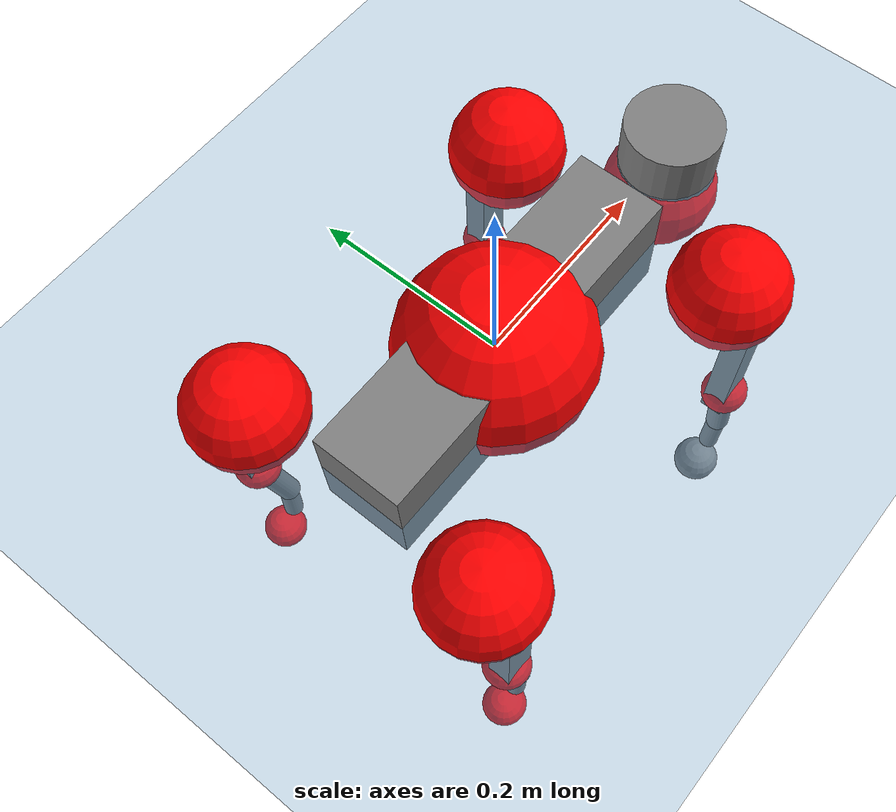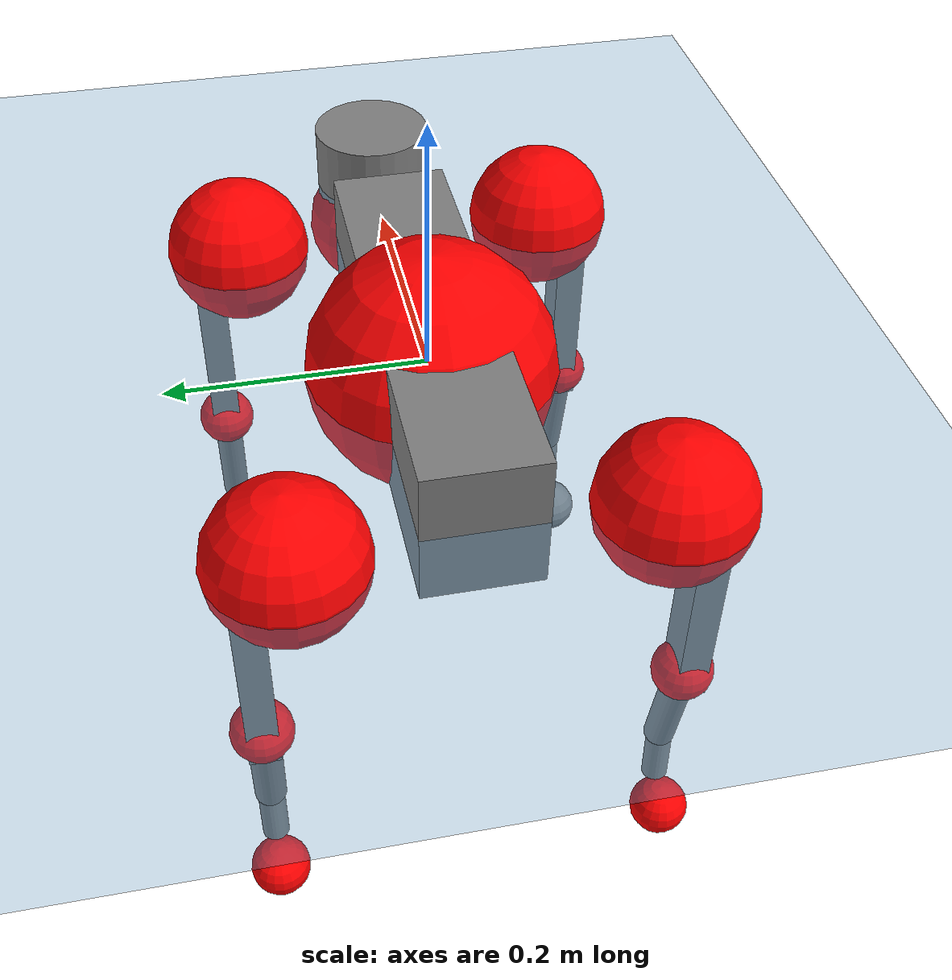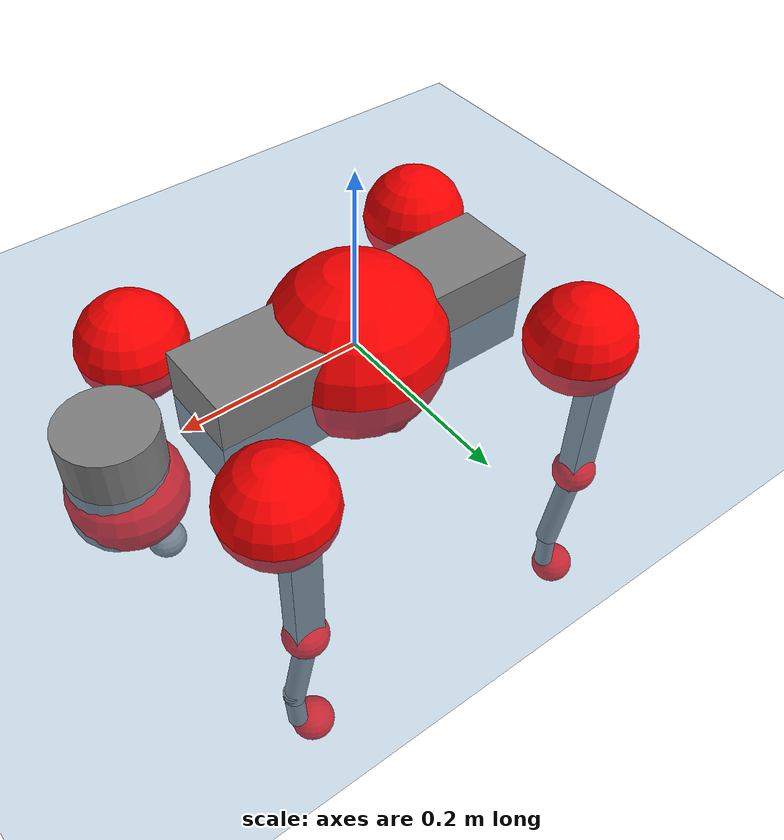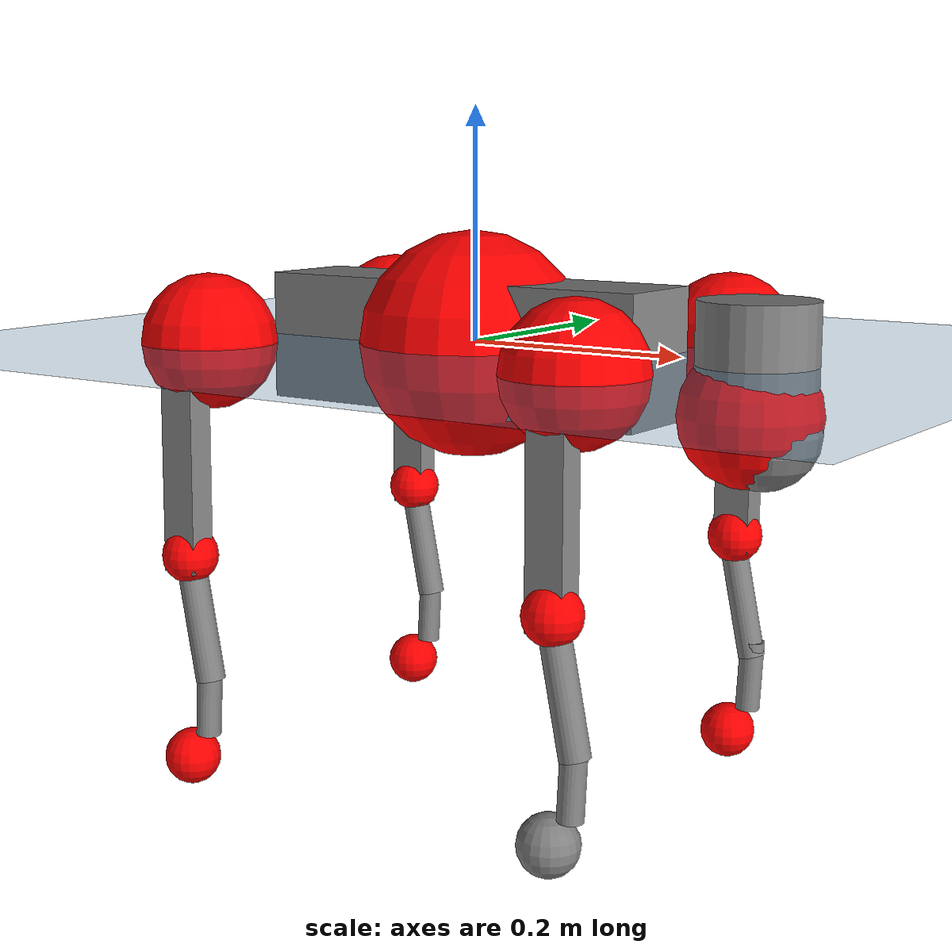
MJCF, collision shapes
<mujoco model="go2">
  <compiler angle="radian" assetdir="assets" balanceinertia="true" inertiafromgeom="false"/>

  <option timestep="0.005" density="1.2" viscosity="2e-05"/>

  <size nkey="1"/>

  <visual>
    <quality shadowsize="8192"/>
    <map shadowclip="0.5"/>
  </visual>

  <default>
    <default class="/">
      <geom contype="0" conaffinity="0" group="1" solref="-1000 -80"/>
      <site size="0.01 0.005 0.005" group="5"/>
      <general forcelimited="true" biastype="affine" gainprm="20" biasprm="0 -20 -0.5"/>
      <default class="go2">
        <joint armature="0.01" damping="0.01" frictionloss="0.2"/>
        <geom condim="1" margin="0.001"/>
        <default class="visual">
          <geom type="mesh" group="2"/>
        </default>
        <default class="collision">
          <geom group="3"/>
          <default class="foot">
            <geom size="0.022 0 0" condim="6" priority="1" friction="0.8 0.02 0.01" solimp="0.015 1 0.022"/>
          </default>
        </default>
        <default class="reward_collision_sphere">
          <geom group="5" rgba="1 0 0 1"/>
        </default>
      </default>
    </default>
  </default>

  <asset>
    <texture type="skybox" colorspace="auto" name="//unnamed_texture_0" builtin="gradient" rgb1="0.95 0.95 0.95" rgb2="0.95 0.95 0.95" width="100" height="600"/>
    <texture type="2d" colorspace="auto" name="texplane" builtin="checker" rgb1="0.345 0.575 0.748" rgb2="0.345 0.575 0.748" markrgb="1 1 1" width="512" height="512"/>
    <material name="MatPlane" class="/" texture="texplane" texuniform="true" texrepeat="2 2" specular="0.9"/>
    <material name="metal" class="/" rgba="0.9 0.95 0.95 1"/>
    <material name="black" class="/" rgba="0 0 0 1"/>
    <material name="white" class="/"/>
    <material name="gray" class="/" rgba="0.671705 0.692426 0.77427 1"/>
    <mesh name="base_0" class="/" file="base_0.obj"/>
    <mesh name="base_1" class="/" file="base_1.obj"/>
    <mesh name="base_2" class="/" file="base_2.obj"/>
    <mesh name="base_3" class="/" file="base_3.obj"/>
    <mesh name="base_4" class="/" file="base_4.obj"/>
    <mesh name="hip_0" class="/" file="hip_0.obj"/>
    <mesh name="hip_1" class="/" file="hip_1.obj"/>
    <mesh name="thigh_0" class="/" file="thigh_0.obj"/>
    <mesh name="thigh_1" class="/" file="thigh_1.obj"/>
    <mesh name="thigh_mirror_0" class="/" file="thigh_mirror_0.obj"/>
    <mesh name="thigh_mirror_1" class="/" file="thigh_mirror_1.obj"/>
    <mesh name="calf_0" class="/" file="calf_0.obj"/>
    <mesh name="calf_1" class="/" file="calf_1.obj"/>
    <mesh name="calf_mirror_0" class="/" file="calf_mirror_0.obj"/>
    <mesh name="calf_mirror_1" class="/" file="calf_mirror_1.obj"/>
    <mesh name="foot" class="/" file="foot.obj"/>
  </asset>

  <worldbody>
    <geom name="floor" class="/" size="100 100 0.125" type="plane" group="0" material="MatPlane"/>
    <light name="toplight_shadow" class="/" pos="0 0 5" dir="0.0990148 0.0990148 -0.990148" type="directional" ambient="0.04 0.04 0.04" diffuse="0.55 0.55 0.55" specular="0.12 0.12 0.12"/>
    <light name="toplight_fill" class="/" pos="0 0 5" dir="0.0990148 0.0990148 -0.990148" type="directional" castshadow="false" ambient="0.04 0.04 0.04" diffuse="0.3 0.3 0.3" specular="0.08 0.08 0.08"/>
    <body name="trunk" childclass="go2" pos="-0.00131033 -0.00279842 -0.00193397" quat="0.999999 -0.00106615 0.000616035 5.92929e-05">
      <inertial pos="0.01895 0.00077448 -0.00451893" quat="-0.00938888 0.712332 0.000824385 0.701779" mass="6.53676" diaginertia="0.0795169 0.179171 0.0114001"/>
      <joint name="//unnamed_joint_0" type="free" armature="0" damping="0" frictionloss="0"/>
      <geom name="//unnamed_geom_1" class="visual" material="black" mesh="base_0"/>
      <geom name="//unnamed_geom_2" class="visual" material="black" mesh="base_1"/>
      <geom name="//unnamed_geom_3" class="visual" material="black" mesh="base_2"/>
      <geom name="//unnamed_geom_4" class="visual" material="white" mesh="base_3"/>
      <geom name="//unnamed_geom_5" class="visual" material="gray" mesh="base_4"/>
      <geom name="trunk_1" class="collision" size="0.183642 0.045642 0.0556491" type="box"/>
      <geom name="trunk_2" class="collision" size="0.048815 0.0439335" pos="0.269112 0 0.00853884" type="cylinder"/>
      <geom name="trunk_3" class="collision" size="0.0458861" pos="0.276666 0 -0.0512331"/>
      <geom name="//unnamed_geom_9" class="reward_collision_sphere" size="0.09763"/>
      <geom name="//unnamed_geom_10" class="reward_collision_sphere" size="0.058578" pos="0.264391 0 -0.0384248"/>
      <site name="imu" pos="-0.0261217 0.00856622 0.0320213" size="0.009763"/>
      <camera name="track" pos="0 -2.26153 0" quat="0.707107 0.707107 0 0" mode="trackcom"/>
      <camera name="ego_camera" pos="0.294607 0 0.0384248" quat="-0.5 -0.5 0.5 0.5"/>
      <body name="FL_hip" pos="0.179619 0.049807 0.00318936" quat="1 -3.21041e-05 0.000428204 -0.000438105">
        <inertial pos="-0.00595726 -0.000120988 -0.00285189" quat="0.49821 0.498104 0.502551 0.50112" mass="0.654092" diaginertia="0.000685569 0.00110768 0.000231174"/>
        <joint name="FL_hip_joint" pos="0 0 0" axis="0.999958 0.00913093 0.000594098" range="-1.02994 1.00568" armature="0.0110493" damping="0" frictionloss="0.216349"/>
        <geom name="//unnamed_geom_11" class="visual" material="metal" mesh="hip_0"/>
        <geom name="//unnamed_geom_12" class="visual" material="gray" mesh="hip_1"/>
        <geom name="//unnamed_geom_13" class="collision" size="0.0449098 0.019526" pos="0 0.0904611 0" quat="0.707107 0.707107 0 0" type="cylinder"/>
        <geom name="//unnamed_geom_14" class="reward_collision_sphere" size="0.058578" pos="0 0.0791534 0"/>
        <body name="FL_thigh" pos="-0.00126892 0.107799 0.0031442" quat="1 -0.00028039 0.000402238 0.000140734">
          <inertial pos="-0.00227076 -0.0260863 -0.0259727" quat="0.832115 0.0858877 -0.019131 0.547578" mass="1.07102" diaginertia="0.00455284 0.010971 0.00039202"/>
          <joint name="FL_thigh_joint" pos="0 0 0" axis="-0.00457756 0.999903 -0.0131356" stiffness="0.000490094" range="-1.61729 3.54236" armature="0.0111016" damping="0" frictionloss="0.219966"/>
          <geom name="//unnamed_geom_15" class="visual" material="metal" mesh="thigh_0"/>
          <geom name="//unnamed_geom_16" class="visual" material="gray" mesh="thigh_1"/>
          <geom name="//unnamed_geom_17" class="collision" size="0.103976 0.0119597 0.0165971" pos="0 0 -0.0909387" quat="0.707107 0 0.707107 0" type="box"/>
          <body name="FL_calf" pos="-0.000993879 -0.000131136 -0.181502" quat="0.999999 -0.000629564 -0.00103587 -0.000682209">
            <inertial pos="0.00869483 0.00214303 -0.123304" quat="0.716036 0.00325382 0.00208521 0.698053" mass="0.227695" diaginertia="0.00110176 0.00279917 2.33185e-05"/>
            <joint name="FL_calf_joint" pos="0 0 0" axis="0.000754292 1 0.000360231" stiffness="0.00224479" range="-2.70219 -0.884548" armature="0.00830716" damping="0.00762239" frictionloss="0.202679"/>
            <geom name="//unnamed_geom_18" class="visual" material="gray" mesh="calf_0"/>
            <geom name="//unnamed_geom_19" class="visual" material="black" mesh="calf_1"/>
            <geom name="FL_calf0" class="collision" size="0.0117156 0.058578" pos="0.00755402 0 -0.0512331" quat="0.994493 0 -0.104807 0" type="cylinder"/>
            <geom name="//unnamed_geom_21" class="collision" size="0.0107393 0.0317298" pos="0.018885 0 -0.126375" quat="0.999688 0 0.0249974 0" type="cylinder"/>
            <geom name="//unnamed_geom_22" class="visual" pos="0 0 -0.181877" quat="1 0 0 0" material="black" mesh="foot"/>
            <geom name="FL_foot" class="foot" size="0.0205598" pos="-0.0018885 0 -0.181877"/>
            <geom name="//unnamed_geom_24" class="reward_collision_sphere" size="0.0244075"/>
            <geom name="//unnamed_geom_25" class="reward_collision_sphere" size="0.0244075" pos="-0.0018885 0 -0.181877"/>
            <site name="FL_foot" class="foot" pos="-0.0018885 0 -0.181877" size="0.009763"/>
          </body>
        </body>
      </body>
      <body name="FR_hip" pos="0.183037 -0.0507705 0.0019497" quat="1 0.000353021 0.00034981 -0.00082099">
        <inertial pos="-0.0025885 -0.00145861 -0.000402376" quat="0.499181 0.507179 0.499888 0.493659" mass="0.653522" diaginertia="0.000692039 0.00113841 0.000217527"/>
        <joint name="FR_hip_joint" pos="0 0 0" axis="0.999987 -0.00508581 -0.000838814" range="-0.994117 1.05413" armature="0.00930684" damping="0.00778736" frictionloss="0.207058"/>
        <geom name="//unnamed_geom_26" class="visual" pos="0 2.41206e-09 1.03458e-07" quat="4.63268e-05 1 0 0" material="metal" mesh="hip_0"/>
        <geom name="//unnamed_geom_27" class="visual" pos="0 3.91023e-09 -2.55891e-07" quat="4.63268e-05 1 0 0" material="gray" mesh="hip_1"/>
        <geom name="//unnamed_geom_28" class="collision" size="0.0449098 0.019526" pos="0 -0.0904611 0" quat="0.707107 0.707107 0 0" type="cylinder"/>
        <geom name="//unnamed_geom_29" class="reward_collision_sphere" size="0.058578" pos="0 -0.0791534 0"/>
        <body name="FR_thigh" pos="-0.000233852 -0.10862 0.00217844" quat="1 0.000188909 -0.00085177 -0.000277317">
          <inertial pos="-0.00619899 0.0243672 -0.0288234" quat="0.551624 -0.0166805 0.0831176 0.829773" mass="1.04004" diaginertia="0.00439525 0.0102732 0.000378224"/>
          <joint name="FR_thigh_joint" pos="0 0 0" axis="-0.00137139 -0.999939 -0.0109257" stiffness="0.00361856" range="-3.5127 1.52936" armature="0.00962847" damping="0.0148481" frictionloss="0.21678"/>
          <geom name="//unnamed_geom_30" class="visual" material="metal" mesh="thigh_mirror_0"/>
          <geom name="//unnamed_geom_31" class="visual" material="gray" mesh="thigh_mirror_1"/>
          <geom name="//unnamed_geom_32" class="collision" size="0.103976 0.0119597 0.0165971" pos="0 0 -0.0909387" quat="0.707107 0 0.707107 0" type="box"/>
          <body name="FR_calf" pos="0.00268617 -0.00221533 -0.180279" quat="1 -0.000102813 -9.36124e-05 0.000106345">
            <inertial pos="0.00856666 0.000818034 -0.122009" quat="0.706045 -0.00366817 0.00127554 0.708156" mass="0.233504" diaginertia="0.00118433 0.0026907 2.46087e-05"/>
            <joint name="FR_calf_joint" pos="0 0 0" axis="0.000516653 -0.99998 0.00625517" range="0.841661 2.73786" armature="0.00930551" damping="0.0232356" frictionloss="0.20065"/>
            <geom name="//unnamed_geom_33" class="visual" material="gray" mesh="calf_mirror_0"/>
            <geom name="//unnamed_geom_34" class="visual" material="black" mesh="calf_mirror_1"/>
            <geom name="FR_calf0" class="collision" size="0.0126919 0.058578" pos="0.00944252 0 -0.0512331" quat="0.995004 0 -0.0998334 0" type="cylinder"/>
            <geom name="//unnamed_geom_36" class="collision" size="0.0107393 0.0317298" pos="0.018885 0 -0.126375" quat="0.999688 0 0.0249974 0" type="cylinder"/>
            <geom name="//unnamed_geom_37" class="visual" pos="0 0 -0.181877" quat="1 0 0 0" material="black" mesh="foot"/>
            <geom name="FR_foot" class="foot" size="0.0255425" pos="-0.0018885 0 -0.181877"/>
            <geom name="//unnamed_geom_39" class="reward_collision_sphere" size="0.0244075"/>
            <geom name="//unnamed_geom_40" class="reward_collision_sphere" size="0.0244075" pos="-0.0018885 0 -0.181877"/>
            <site name="FR_foot" class="foot" pos="-0.0018885 0 -0.181877" size="0.009763"/>
          </body>
        </body>
      </body>
      <body name="RL_hip" pos="-0.184547 0.0547137 0.00312628" quat="1 -7.28488e-05 -3.37676e-05 -3.07406e-05">
        <inertial pos="0.00677687 0.00311527 -0.00080368" quat="0.505218 0.498362 0.497313 0.499069" mass="0.626328" diaginertia="0.000657971 0.00112767 0.000213871"/>
        <joint name="RL_hip_joint" pos="0 0 0" axis="-0.999716 -0.0214735 0.0103601" stiffness="0.0124352" range="-1.04204 1.02796" armature="0.00988711" damping="0.0122854" frictionloss="0.21338"/>
        <geom name="//unnamed_geom_41" class="visual" pos="-7.87248e-10 0 -1.54319e-07" quat="4.63268e-05 0 1 0" material="metal" mesh="hip_0"/>
        <geom name="//unnamed_geom_42" class="visual" pos="-1.27622e-09 0 -1.36859e-07" quat="4.63268e-05 0 1 0" material="gray" mesh="hip_1"/>
        <geom name="//unnamed_geom_43" class="collision" size="0.0449098 0.019526" pos="0 0.0904611 0" quat="0.707107 0.707107 0 0" type="cylinder"/>
        <geom name="//unnamed_geom_44" class="reward_collision_sphere" size="0.058578" pos="0 0.0791534 0"/>
        <body name="RL_thigh" pos="-0.00111341 0.110451 0.00261972" quat="1 0.00014354 0.000649873 -5.51575e-05">
          <inertial pos="-0.00332672 -0.0245444 -0.027588" quat="0.829665 0.0774614 -0.0126407 0.552716" mass="1.04184" diaginertia="0.00452366 0.0104606 0.000406491"/>
          <joint name="RL_thigh_joint" pos="0 0 0" axis="0.00874194 0.999959 0.00243591" range="-0.507699 4.56593" armature="0.00851894" damping="0.00184503" frictionloss="0.179677"/>
          <geom name="//unnamed_geom_45" class="visual" material="metal" mesh="thigh_0"/>
          <geom name="//unnamed_geom_46" class="visual" material="gray" mesh="thigh_1"/>
          <geom name="//unnamed_geom_47" class="collision" size="0.103976 0.0119597 0.0165971" pos="0 0 -0.0909387" quat="0.707107 0 0.707107 0" type="box"/>
          <body name="RL_calf" pos="0.000639544 -0.000579045 -0.178631" quat="1 -0.000240593 -0.000201866 -0.000123993">
            <inertial pos="0.00581269 -0.000381053 -0.117991" quat="0.710655 0.00150427 -0.00454883 0.703525" mass="0.226013" diaginertia="0.00111811 0.00270174 2.45447e-05"/>
            <joint name="RL_calf_joint" pos="0 0 0" axis="0.00111043 0.999984 -0.00549803" range="-2.73825 -0.839162" armature="0.00877369" damping="0.000593393" frictionloss="0.198708"/>
            <geom name="//unnamed_geom_48" class="visual" material="gray" mesh="calf_0"/>
            <geom name="//unnamed_geom_49" class="visual" material="black" mesh="calf_1"/>
            <geom name="RL_calf0" class="collision" size="0.0126919 0.058578" pos="0.00944252 0 -0.0512331" quat="0.995004 0 -0.0998334 0" type="cylinder"/>
            <geom name="//unnamed_geom_51" class="collision" size="0.0107393 0.0317298" pos="0.018885 0 -0.126375" quat="0.999688 0 0.0249974 0" type="cylinder"/>
            <geom name="//unnamed_geom_52" class="visual" pos="0 0 -0.181877" quat="1 0 0 0" material="black" mesh="foot"/>
            <geom name="RL_foot" class="foot" size="0.0218513" pos="-0.0018885 0 -0.181877"/>
            <geom name="//unnamed_geom_54" class="reward_collision_sphere" size="0.0244075"/>
            <geom name="//unnamed_geom_55" class="reward_collision_sphere" size="0.0244075" pos="-0.0018885 0 -0.181877"/>
            <site name="RL_foot" class="foot" pos="-0.0018885 0 -0.181877" size="0.009763"/>
          </body>
        </body>
      </body>
      <body name="RR_hip" pos="-0.182769 -0.0531046 0.00209075" quat="0.999999 -0.000422558 0.00118306 -0.000934502">
        <inertial pos="0.00531556 0.000357559 -0.000840687" quat="0.491461 0.50077 0.501095 0.506557" mass="0.631514" diaginertia="0.000687425 0.00114213 0.000212672"/>
        <joint name="RR_hip_joint" pos="0 0 0" axis="-0.999992 0.00365943 -0.00151121" stiffness="0.00361125" range="-1.05568 1.04691" armature="0.010539" damping="0.0110911" frictionloss="0.174429"/>
        <geom name="//unnamed_geom_56" class="visual" pos="7.93705e-10 2.41206e-09 -2.57777e-07" quat="2.14617e-09 4.63268e-05 4.63268e-05 -1" material="metal" mesh="hip_0"/>
        <geom name="//unnamed_geom_57" class="visual" pos="1.26025e-09 3.91023e-09 1.19033e-07" quat="2.14617e-09 4.63268e-05 4.63268e-05 -1" material="gray" mesh="hip_1"/>
        <geom name="//unnamed_geom_58" class="collision" size="0.0449098 0.019526" pos="0 -0.0904611 0" quat="0.707107 0.707107 0 0" type="cylinder"/>
        <geom name="//unnamed_geom_59" class="reward_collision_sphere" size="0.058578" pos="0 -0.0791534 0"/>
        <body name="RR_thigh" pos="-0.00100095 -0.109477 -0.00204142" quat="0.999999 -0.00107663 0.000183265 0.000411189">
          <inertial pos="-0.00347791 0.0229027 -0.0286874" quat="0.551818 -0.0189226 0.0824447 0.829664" mass="1.01562" diaginertia="0.0042512 0.0104903 0.000381036"/>
          <joint name="RR_thigh_joint" pos="0 0 0" axis="-0.00010443 -1 -0.000389716" range="-4.57348 0.580798" armature="0.011034" damping="0.0107844" frictionloss="0.187849"/>
          <geom name="//unnamed_geom_60" class="visual" material="metal" mesh="thigh_mirror_0"/>
          <geom name="//unnamed_geom_61" class="visual" material="gray" mesh="thigh_mirror_1"/>
          <geom name="//unnamed_geom_62" class="collision" size="0.103976 0.0119597 0.0165971" pos="0 0 -0.0909387" quat="0.707107 0 0.707107 0" type="box"/>
          <body name="RR_calf" pos="-0.00038872 0.00259858 -0.181523" quat="1 -0.000495346 0.000108176 -0.000137303">
            <inertial pos="0.00636237 3.57472e-05 -0.118222" quat="0.70087 -0.00558534 0.0104187 0.713191" mass="0.223681" diaginertia="0.00114054 0.00257646 2.46307e-05"/>
            <joint name="RR_calf_joint" pos="0 0 0" axis="-0.00812125 -0.999936 0.00788303" stiffness="0.00141856" range="0.892302 2.73062" armature="0.00836614" damping="0.0116606" frictionloss="0.203151"/>
            <geom name="//unnamed_geom_63" class="visual" material="gray" mesh="calf_mirror_0"/>
            <geom name="//unnamed_geom_64" class="visual" material="black" mesh="calf_mirror_1"/>
            <geom name="RR_calf0" class="collision" size="0.0126919 0.058578" pos="0.00944252 0 -0.0512331" quat="0.995004 0 -0.0998334 0" type="cylinder"/>
            <geom name="//unnamed_geom_66" class="collision" size="0.0107393 0.0317298" pos="0.018885 0 -0.126375" quat="0.999688 0 0.0249974 0" type="cylinder"/>
            <geom name="//unnamed_geom_67" class="visual" pos="0 0 -0.181877" quat="1 0 0 0" material="black" mesh="foot"/>
            <geom name="RR_foot" class="foot" size="0.0224649" pos="-0.0018885 0 -0.181877"/>
            <geom name="//unnamed_geom_69" class="reward_collision_sphere" size="0.0244075"/>
            <geom name="//unnamed_geom_70" class="reward_collision_sphere" size="0.0244075" pos="-0.0018885 0 -0.181877"/>
            <site name="RR_foot" class="foot" pos="-0.0018885 0 -0.181877" size="0.009763"/>
          </body>
        </body>
      </body>
    </body>
  </worldbody>

  <contact>
    <pair class="/" geom1="floor" geom2="FL_foot" name="//unnamed_contact_0"/>
    <pair class="/" geom1="floor" geom2="FR_foot" name="//unnamed_contact_1"/>
    <pair class="/" geom1="floor" geom2="RL_foot" name="//unnamed_contact_2"/>
    <pair class="/" geom1="floor" geom2="RR_foot" name="//unnamed_contact_3"/>
  </contact>

  <actuator>
    <general name="FL_hip" class="/" joint="FL_hip_joint" forcerange="-24.006 24.006" gainprm="19.5466" biasprm="0 -19.5466 -0.487497"/>
    <general name="FL_thigh" class="/" joint="FL_thigh_joint" forcerange="-20.8959 20.8959" gainprm="19.5466" biasprm="0 -19.5466 -0.487497"/>
    <general name="FL_calf" class="/" joint="FL_calf_joint" forcerange="-44.2827 44.2827" gainprm="19.5466" biasprm="0 -19.5466 -0.487497"/>
    <general name="FR_hip" class="/" joint="FR_hip_joint" forcerange="-23.6906 23.6906" gainprm="19.5466" biasprm="0 -19.5466 -0.487497"/>
    <general name="FR_thigh" class="/" joint="FR_thigh_joint" forcerange="-23.3249 23.3249" gainprm="19.5466" biasprm="0 -19.5466 -0.487497"/>
    <general name="FR_calf" class="/" joint="FR_calf_joint" forcerange="-39.6504 39.6504" gainprm="19.5466" biasprm="0 -19.5466 -0.487497"/>
    <general name="RL_hip" class="/" joint="RL_hip_joint" forcerange="-23.9456 23.9456" gainprm="19.5466" biasprm="0 -19.5466 -0.487497"/>
    <general name="RL_thigh" class="/" joint="RL_thigh_joint" forcerange="-24.0155 24.0155" gainprm="19.5466" biasprm="0 -19.5466 -0.487497"/>
    <general name="RL_calf" class="/" joint="RL_calf_joint" forcerange="-42.325 42.325" gainprm="19.5466" biasprm="0 -19.5466 -0.487497"/>
    <general name="RR_hip" class="/" joint="RR_hip_joint" forcerange="-22.4548 22.4548" gainprm="19.5466" biasprm="0 -19.5466 -0.487497"/>
    <general name="RR_thigh" class="/" joint="RR_thigh_joint" forcerange="-22.0818 22.0818" gainprm="19.5466" biasprm="0 -19.5466 -0.487497"/>
    <general name="RR_calf" class="/" joint="RR_calf_joint" forcerange="-47.2561 47.2561" gainprm="19.5466" biasprm="0 -19.5466 -0.487497"/>
  </actuator>

  <sensor>
    <gyro site="imu" name="imu_angular_velocity"/>
    <velocimeter site="imu" name="imu_linear_velocity"/>
    <framelinvel objtype="site" objname="FL_foot" name="FL_foot_global_linear_velocity"/>
    <framelinvel objtype="site" objname="FR_foot" name="FR_foot_global_linear_velocity"/>
    <framelinvel objtype="site" objname="RL_foot" name="RL_foot_global_linear_velocity"/>
    <framelinvel objtype="site" objname="RR_foot" name="RR_foot_global_linear_velocity"/>
  </sensor>

  <keyframe>
    <key name="home" qpos="0 0 0.325 1 0 0 0 0.1 0.8 -1.5 -0.1 -0.8 1.5 -0.1 0.8 -1.5 0.1 -0.8 1.5"/>
  </keyframe>
</mujoco>
